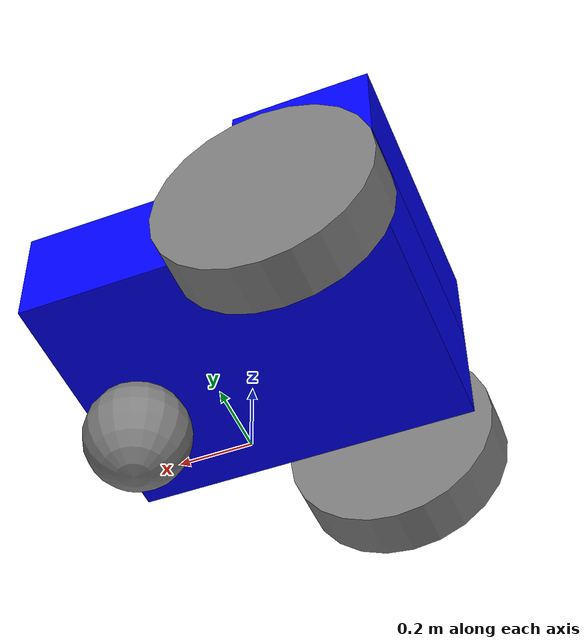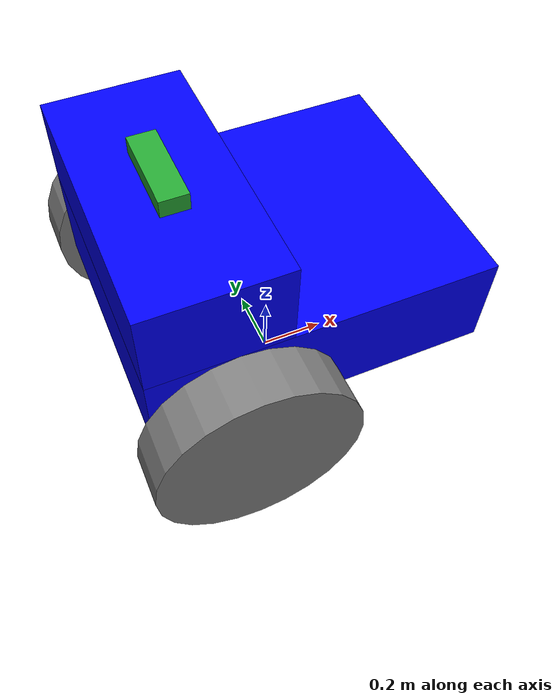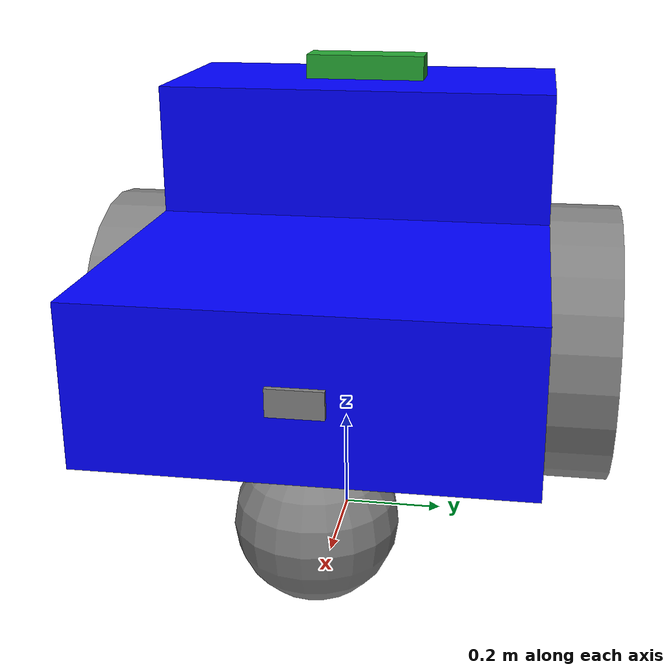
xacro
<?xml version="1.0"?>
<robot name="my_robot" xmlns:xacro="http://www.ros.org/wiki/xacro">

    <xacro:include filename="common_properties.xacro" />
    <xacro:include filename="mobile_base.xacro" />
    <xacro:include filename="mobile_base_gazebo.xacro" />
    <xacro:include filename="water_tank.xacro"/>
    <xacro:include filename="soap_tank.xacro"/>
    <xacro:include filename="camera.xacro" />

</robot>

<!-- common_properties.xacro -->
<robot xmlns:xacro="http://www.ros.org/wiki/xacro">

        <material name="blue">
            <color rgba="0 0 1 1" />
        </material>

        <material name="grey">
            <color rgba="0.5 0.5 0.5 1" />
        </material>

        <material name="orange">
            <color rgba="1 0.5 0 1"/>
        </material>

        <material name="yellow">
            <color rgba="1 1 0 1"/>
        </material>

        <xacro:macro name="box_inertia" params="m x y z o_xyz o_rpy">
            <inertial>
                <mass value="${m}" />
                <origin xyz="${o_xyz}" rpy="${o_rpy}"/>
                <inertia ixx="${(m/12) * (y*y + z*z)}" ixy="0" ixz="0"
                         iyy="${(m/12) * (x*x + z*z)}" iyz="0"
                         izz="${(m/12) * (x*x + y*y)}"/>
            </inertial>
        </xacro:macro>

        <xacro:macro name="cylinder_inertia" params="m r l o_xyz o_rpy">
            <inertial>
                <mass value="${m}" />
                <origin xyz="${o_xyz}" rpy="${o_rpy}"/>
                <inertia ixx="${(m/12)*(3*r*r + l*l)}" ixy="0" ixz="0"
                         iyy="${(m/12)*(3*r*r + l*l)}" iyz="0"
                         izz="${(m/2) * (r*r)}"/>
            </inertial>
        </xacro:macro>

        <xacro:macro name="sphere_inertia" params="m r o_xyz o_rpy">
            <inertial>
                <mass value="${m}"/>
                <origin xyz="${o_xyz}" rpy="${o_rpy}"/>
                <inertia ixx="${(2/5) *m*r*r}" ixy="0" ixz="0"
                         iyy="${(2/5) *m*r*r}" iyz="0"
                         izz="${(2/5) *m*r*r}"/>
            </inertial>
        </xacro:macro>

    </robot>

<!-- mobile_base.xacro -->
<robot xmlns:xacro="http://www.ros.org/wiki/xacro">
        <xacro:property name="base_length" value="1"/>
        <xacro:property name="base_width" value="0.8"/>
        <xacro:property name="base_height" value="0.3"/>

        <xacro:property name="wheel_radius" value="0.3"/>
        <xacro:property name="wheel_length" value="0.15"/>

        <link name="base_footprint" />

        <link name="base_link">
            <visual>
                <geometry>
                    <box size="${base_length} ${base_width} ${base_height}" />
                </geometry>
                <origin xyz="0 0 ${base_height / 2.0}" rpy="0 0 0" />
                <material name="blue" />
            </visual>
            <collision>
                <geometry>
                    <box size="${base_length} ${base_width} ${base_height}" />
                </geometry>
                <origin xyz="0 0 ${base_height / 2.0}" rpy="0 0 0" />
            </collision>
            <xacro:box_inertia m="5.0" x="${base_length}" y="${base_width}" z="${base_height}"
                               o_xyz="0 0 ${base_height / 2.0}" o_rpy="0 0 0"/>
        </link>

        <xacro:macro name="wheel_link" params="prefix">
            <link name="${prefix}_wheel_link">
                <visual>
                    <geometry>
                        <cylinder radius="${wheel_radius}" length="${wheel_length}" />
                    </geometry>
                    <origin xyz="0 0 0" rpy="${pi / 2.0} 0 0" />
                    <material name="grey" />
                </visual>
                <collision>
                    <geometry>
                        <sphere radius="${wheel_radius}"/>
                    </geometry>
                    <origin xyz="0 0 0" rpy="0 0 0" />
                </collision>
                <xacro:cylinder_inertia m="1.0" r="${wheel_radius}" l="${wheel_length}"
                                        o_xyz="0 0 0" o_rpy="${pi / 2.0} 0 0"/>
            </link>
        </xacro:macro>

        <xacro:wheel_link prefix="right"/>
        <xacro:wheel_link prefix="left"/>

        <link name="caster_wheel_link">
            <visual>
                <geometry>
                    <sphere radius="${wheel_radius / 2.0}" />
                </geometry>
                <origin xyz="0 0 0" rpy="0 0 0" />
                <material name="grey" />
            </visual>
            <collision>
                <geometry>
                    <sphere radius="${wheel_radius / 2.0}" />
                </geometry>
                <origin xyz="0 0 0" rpy="0 0 0" />
            </collision>
            <xacro:sphere_inertia m="0.5" r="${wheel_radius / 2.0}"
                                  o_xyz="0 0 0" o_rpy="0 0 0"/>
        </link>

        <joint name="base_joint" type="fixed">
            <parent link="base_footprint"/>
            <child link="base_link"/>
            <origin xyz="0 0 ${wheel_radius}" rpy="0 0 0"/>
        </joint>

        <joint name="base_right_wheel_joint" type="continuous">
            <parent link="base_link" />
            <child link="right_wheel_link" />
            <origin xyz="${-base_length / 4.0} ${-(base_width + wheel_length) / 2.0} 0" rpy="0 0 0" />
            <axis xyz="0 1 0" />
        </joint>

        <joint name="base_left_wheel_joint" type="continuous">
            <parent link="base_link" />
            <child link="left_wheel_link" />
            <origin xyz="${-base_length / 4.0} ${(base_width + wheel_length) / 2.0} 0" rpy="0 0 0" />
            <axis xyz="0 1 0" />
        </joint>

        <joint name="base_caster_wheel_joint" type="fixed">
            <parent link="base_link" />
            <child link="caster_wheel_link" />
            <origin xyz="${base_length / 3.0} 0 ${-wheel_radius / 2.0}" rpy="0 0 0" />

        </joint>
    </robot>

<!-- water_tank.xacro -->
<robot xmlns:xacro="http://www.ros.org/wiki/xacro">

    <xacro:property name="water_tank_length" value="${base_width}"/>
    <xacro:property name="water_tank_width" value="0.40"/>
    <xacro:property name="water_tank_height" value="0.26"/>

    <link name="water_tank_link">
        <visual>
            <geometry>
                <box size="${water_tank_length} ${water_tank_width} ${water_tank_height}"/>
            </geometry>
            <origin xyz="0 0 0" rpy="0 0 1.5708" />
            <material name="blue"/>
        </visual>
        <collision>
            <geometry>
                <box size="${water_tank_length} ${water_tank_width} ${water_tank_height}"/>
            </geometry>
            <origin xyz="0 0 0" rpy="0 0 1.5708" />
        </collision>
        <xacro:box_inertia m="5" x="${water_tank_length}" y="${water_tank_width}" z="${water_tank_height}"
                          o_xyz="0 0 0" o_rpy="0 0 0"/>
    </link>

    <joint name="base_water_tank" type="fixed">
        <parent link="base_link"/>
        <child link="water_tank_link"/>
        <origin xyz="${-base_length/2.0 + water_tank_width/2.0} 0 ${base_height + water_tank_height/2.0}" rpy="0 0 0"/>
    </joint>

</robot>

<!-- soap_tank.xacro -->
<robot xmlns:xacro="http://www.ros.org/wiki/xacro">

    <xacro:property name="soap_tank_length" value="0.25"/>
    <xacro:property name="soap_tank_width" value="0.08"/>
    <xacro:property name="soap_tank_height" value="0.05"/>

    <link name="soap_tank_link">
        <visual>
            <geometry>
                <box size="${soap_tank_length} ${soap_tank_width} ${soap_tank_height}"/>
            </geometry>
            <origin xyz="0 0 ${soap_tank_height/2.0}" rpy="0 0 1.5708" />
            <material name="green"/>
        </visual>
        <collision>
            <geometry>
                <box size="${soap_tank_length} ${soap_tank_width} ${soap_tank_height}"/>
            </geometry>
            <origin xyz="0 0 ${soap_tank_height/2.0}" rpy="0 0 1.5708" />
        </collision>
        <xacro:box_inertia m="5" x="${soap_tank_length}" y="${soap_tank_width}" z="${soap_tank_height}"
                          o_xyz="0 0 0" o_rpy="0 0 0"/>
    </link>

    <joint name="base_soap_tank" type="fixed">
        <parent link="base_link"/>
        <child link="soap_tank_link"/>
        <origin xyz="${-base_length/2.0 + water_tank_width/2.0} 0 ${base_height + water_tank_height}" rpy="0 0 0"/>
    </joint>

</robot>

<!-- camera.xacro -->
<robot xmlns:xacro="http://www.ros.org/wiki/xacro">

    <xacro:property name="camera_length" value="0.01"/>
    <xacro:property name="camera_width" value="0.1"/>
    <xacro:property name="camera_height" value="0.05"/>

    <link name="camera_link">
        <visual>
            <geometry>
                <box size="${camera_length} ${camera_width} ${camera_height}"/>
            </geometry>
            <material name="grey"/>
        </visual>
        <collision>
            <geometry>
                <box size="${camera_length} ${camera_width} ${camera_height}"/>
            </geometry>
        </collision>
        <xacro:box_inertia m="0.1" x="${camera_length}" y="${camera_width}" z="${camera_height}"
                          o_xyz="0 0 0" o_rpy="0 0 0"/>
    </link>

    <joint name="base_camera_joint" type="fixed">
        <parent link="base_link"/>
        <child link="camera_link"/>
        <origin xyz="${(base_length + camera_length)/2.0} 0 ${base_height/2.0}" rpy="0 0 0"/>
    </joint>

    <!-- For OpenCV to work with Rviz  -->
    <link name="camera_link_optical"/>

    <joint name="camera_optical_joint" type="fixed">
        <!-- these values have to be these values otherwise the gazebo camera
            image won't be aligned properly with the frame it is supposedly
            originating from -->
        <origin xyz="0 0 0" rpy="${-pi/2} 0 ${-pi/2}"/>
        <parent link="camera_link"/>
        <child link="camera_link_optical"/>
    </joint>

    <gazebo reference="camera_link">
        <sensor name="camera" type="camera">
            <camera>
                <horizontal_fov>1.3962634</horizontal_fov>
                <image>
                    <width>640</width>
                    <height>480</height>
                    <format>R8G8B8</format>
                </image>
                <clip>
                    <near>0.1</near>
                    <far>15</far>
                </clip>
                <noise>
                    <type>gaussian</type>
                    <mean>0.0</mean>
                    <stddev>0.007</stddev>
                </noise>
                <optical_frame_id>camera_link_optical</optical_frame_id>
                <camera_info_topic>camera/camera_info</camera_info_topic>
            </camera>
            <always_on>1</always_on>
            <update_rate>20</update_rate>
            <visualize>true</visualize>
            <topic>camera/image_raw</topic>
        </sensor>
    </gazebo>
</robot>
